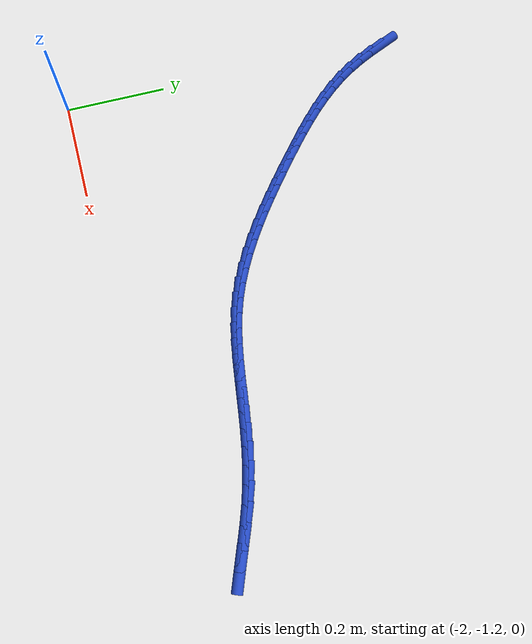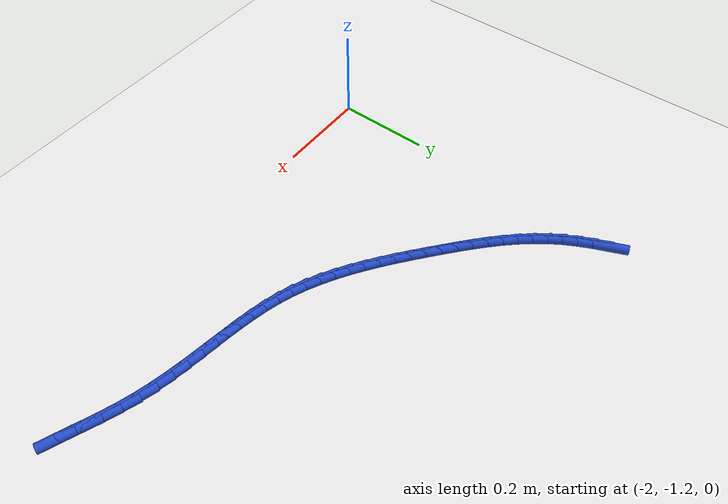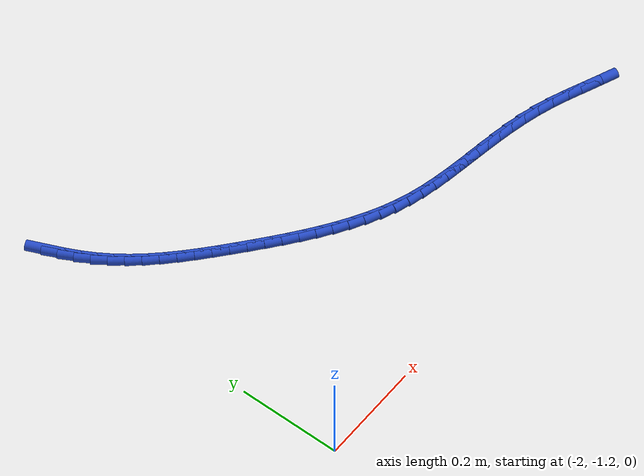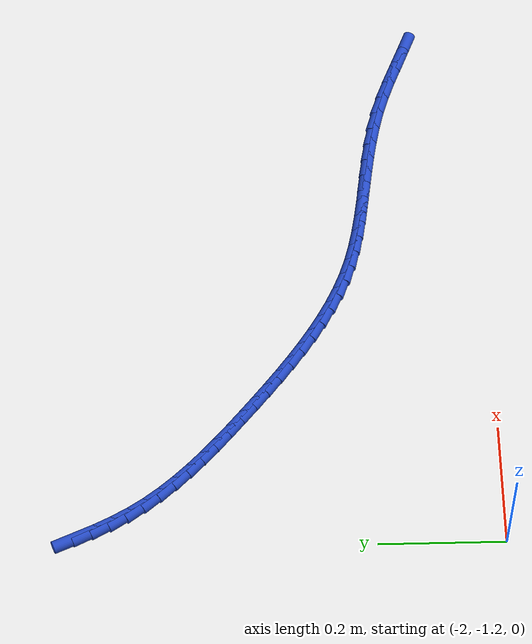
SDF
<sdf version="1.6">
 <world name="default">
  <model name="ground_plane">
   <static>1</static>
   <link name="link">
    <collision name="collision">
     <geometry><plane><normal>0 0 1</normal><size>100 100</size></plane></geometry>
     <surface><friction><ode><mu>100</mu><mu2>50</mu2></ode></friction></surface>
    </collision>
    <visual name="visual">
     <cast_shadows>0</cast_shadows>
     <geometry><plane><normal>0 0 1</normal><size>100 100</size></plane></geometry>
     <material>
      <script><uri>file://media/materials/scripts/gazebo.material</uri><name>Gazebo/WhiteGlow</name></script>
     </material>
    </visual>
   </link>
  </model>
  <model name="line">
   <link name="link_128">
    <pose>-1.9824205630248355 -0.5352586551869116 0.01 0 1.57 -1.163540209218341</pose>
    <collision name="collision">
     <geometry><cylinder><radius>0.01</radius><length>0.08</length></cylinder></geometry>
    </collision>
    <visual name="visual">
     <material>
      <script><name>Gazebo/Blue</name><uri>file://media/materials/scripts/gazebo.material</uri></script>
     </material>
     <geometry><cylinder><radius>0.01</radius><length>0.08</length></cylinder></geometry>
    </visual>
   </link>
   <link name="link_129">
    <pose>-1.9704387740347364 -0.5630345999908062 0.01 0 1.57 -1.1161727735054912</pose>
    <collision name="collision">
     <geometry><cylinder><radius>0.01</radius><length>0.08</length></cylinder></geometry>
    </collision>
    <visual name="visual">
     <material>
      <script><name>Gazebo/Blue</name><uri>file://media/materials/scripts/gazebo.material</uri></script>
     </material>
     <geometry><cylinder><radius>0.01</radius><length>0.08</length></cylinder></geometry>
    </visual>
   </link>
   <link name="link_130">
    <pose>-1.9572504735101077 -0.5900172146852638 0.01 0 1.57 -1.0600776561714969</pose>
    <collision name="collision">
     <geometry><cylinder><radius>0.01</radius><length>0.08</length></cylinder></geometry>
    </collision>
    <visual name="visual">
     <material>
      <script><name>Gazebo/Blue</name><uri>file://media/materials/scripts/gazebo.material</uri></script>
     </material>
     <geometry><cylinder><radius>0.01</radius><length>0.08</length></cylinder></geometry>
    </visual>
   </link>
   <link name="link_131">
    <pose>-1.9426340069946706 -0.6161039504251419 0.01 0 1.57 -0.9956645012167168</pose>
    <collision name="collision">
     <geometry><cylinder><radius>0.01</radius><length>0.08</length></cylinder></geometry>
    </collision>
    <visual name="visual">
     <material>
      <script><name>Gazebo/Blue</name><uri>file://media/materials/scripts/gazebo.material</uri></script>
     </material>
     <geometry><cylinder><radius>0.01</radius><length>0.08</length></cylinder></geometry>
    </visual>
   </link>
   <link name="link_132">
    <pose>-1.9263701226586827 -0.6411935276486431 0.01 0 1.57 -0.9294057634139389</pose>
    <collision name="collision">
     <geometry><cylinder><radius>0.01</radius><length>0.08</length></cylinder></geometry>
    </collision>
    <visual name="visual">
     <material>
      <script><name>Gazebo/Blue</name><uri>file://media/materials/scripts/gazebo.material</uri></script>
     </material>
     <geometry><cylinder><radius>0.01</radius><length>0.08</length></cylinder></geometry>
    </visual>
   </link>
   <link name="link_133">
    <pose>-1.9083946022670153 -0.6652665694772015 0.01 0 1.57 -0.8710264741686167</pose>
    <collision name="collision">
     <geometry><cylinder><radius>0.01</radius><length>0.08</length></cylinder></geometry>
    </collision>
    <visual name="visual">
     <material>
      <script><name>Gazebo/Blue</name><uri>file://media/materials/scripts/gazebo.material</uri></script>
     </material>
     <geometry><cylinder><radius>0.01</radius><length>0.08</length></cylinder></geometry>
    </visual>
   </link>
   <link name="link_134">
    <pose>-1.88889000118483 -0.6884340670345137 0.01 0 1.57 -0.8213768809769031</pose>
    <collision name="collision">
     <geometry><cylinder><radius>0.01</radius><length>0.08</length></cylinder></geometry>
    </collision>
    <visual name="visual">
     <material>
      <script><name>Gazebo/Blue</name><uri>file://media/materials/scripts/gazebo.material</uri></script>
     </material>
     <geometry><cylinder><radius>0.01</radius><length>0.08</length></cylinder></geometry>
    </visual>
   </link>
   <link name="link_135">
    <pose>-1.868060877429615 -0.7108186352234217 0.01 0 1.57 -0.7802501099122588</pose>
    <collision name="collision">
     <geometry><cylinder><radius>0.01</radius><length>0.08</length></cylinder></geometry>
    </collision>
    <visual name="visual">
     <material>
      <script><name>Gazebo/Blue</name><uri>file://media/materials/scripts/gazebo.material</uri></script>
     </material>
     <geometry><cylinder><radius>0.01</radius><length>0.08</length></cylinder></geometry>
    </visual>
   </link>
   <link name="link_136">
    <pose>-1.8461117890188612 -0.732542888946765 0.01 0 1.57 -0.7473257426568556</pose>
    <collision name="collision">
     <geometry><cylinder><radius>0.01</radius><length>0.08</length></cylinder></geometry>
    </collision>
    <visual name="visual">
     <material>
      <script><name>Gazebo/Blue</name><uri>file://media/materials/scripts/gazebo.material</uri></script>
     </material>
     <geometry><cylinder><radius>0.01</radius><length>0.08</length></cylinder></geometry>
    </visual>
   </link>
   <link name="link_137">
    <pose>-1.8232472939700564 -0.7537294431073859 0.01 0 1.57 -0.722256153637606</pose>
    <collision name="collision">
     <geometry><cylinder><radius>0.01</radius><length>0.08</length></cylinder></geometry>
    </collision>
    <visual name="visual">
     <material>
      <script><name>Gazebo/Blue</name><uri>file://media/materials/scripts/gazebo.material</uri></script>
     </material>
     <geometry><cylinder><radius>0.01</radius><length>0.08</length></cylinder></geometry>
    </visual>
   </link>
   <link name="link_138">
    <pose>-1.7996719503006882 -0.7745009126081243 0.01 0 1.57 -0.70472570785795</pose>
    <collision name="collision">
     <geometry><cylinder><radius>0.01</radius><length>0.08</length></cylinder></geometry>
    </collision>
    <visual name="visual">
     <material>
      <script><name>Gazebo/Blue</name><uri>file://media/materials/scripts/gazebo.material</uri></script>
     </material>
     <geometry><cylinder><radius>0.01</radius><length>0.08</length></cylinder></geometry>
    </visual>
   </link>
   <link name="link_139">
    <pose>-1.7755903160282462 -0.7949799123518225 0.01 0 1.57 -0.6942104828814194</pose>
    <collision name="collision">
     <geometry><cylinder><radius>0.01</radius><length>0.08</length></cylinder></geometry>
    </collision>
    <visual name="visual">
     <material>
      <script><name>Gazebo/Blue</name><uri>file://media/materials/scripts/gazebo.material</uri></script>
     </material>
     <geometry><cylinder><radius>0.01</radius><length>0.08</length></cylinder></geometry>
    </visual>
   </link>
   <link name="link_140">
    <pose>-1.7512016302898123 -0.8152820155179107 0.01 0 1.57 -0.6846084862300147</pose>
    <collision name="collision">
     <geometry><cylinder><radius>0.01</radius><length>0.08</length></cylinder></geometry>
    </collision>
    <visual name="visual">
     <material>
      <script><name>Gazebo/Blue</name><uri>file://media/materials/scripts/gazebo.material</uri></script>
     </material>
     <geometry><cylinder><radius>0.01</radius><length>0.08</length></cylinder></geometry>
    </visual>
   </link>
   <link name="link_141">
    <pose>-1.7265911288022688 -0.8353718649224052 0.01 0 1.57 -0.6701091279579041</pose>
    <collision name="collision">
     <geometry><cylinder><radius>0.01</radius><length>0.08</length></cylinder></geometry>
    </collision>
    <visual name="visual">
     <material>
      <script><name>Gazebo/Blue</name><uri>file://media/materials/scripts/gazebo.material</uri></script>
     </material>
     <geometry><cylinder><radius>0.01</radius><length>0.08</length></cylinder></geometry>
    </visual>
   </link>
   <link name="link_142">
    <pose>-1.701734488578362 -0.8550690574256717 0.01 0 1.57 -0.6503319635858972</pose>
    <collision name="collision">
     <geometry><cylinder><radius>0.01</radius><length>0.08</length></cylinder></geometry>
    </collision>
    <visual name="visual">
     <material>
      <script><name>Gazebo/Blue</name><uri>file://media/materials/scripts/gazebo.material</uri></script>
     </material>
     <geometry><cylinder><radius>0.01</radius><length>0.08</length></cylinder></geometry>
    </visual>
   </link>
   <link name="link_143">
    <pose>-1.6766029571343783 -0.8741873256297091 0.01 0 1.57 -0.6250515397433934</pose>
    <collision name="collision">
     <geometry><cylinder><radius>0.01</radius><length>0.08</length></cylinder></geometry>
    </collision>
    <visual name="visual">
     <material>
      <script><name>Gazebo/Blue</name><uri>file://media/materials/scripts/gazebo.material</uri></script>
     </material>
     <geometry><cylinder><radius>0.01</radius><length>0.08</length></cylinder></geometry>
    </visual>
   </link>
   <link name="link_144">
    <pose>-1.6511677819866042 -0.8925404021365152 0.01 0 1.57 -0.5939764310257649</pose>
    <collision name="collision">
     <geometry><cylinder><radius>0.01</radius><length>0.08</length></cylinder></geometry>
    </collision>
    <visual name="visual">
     <material>
      <script><name>Gazebo/Blue</name><uri>file://media/materials/scripts/gazebo.material</uri></script>
     </material>
     <geometry><cylinder><radius>0.01</radius><length>0.08</length></cylinder></geometry>
    </visual>
   </link>
   <link name="link_145">
    <pose>-1.625400210651324 -0.9099420195480883 0.01 0 1.57 -0.5567654130562475</pose>
    <collision name="collision">
     <geometry><cylinder><radius>0.01</radius><length>0.08</length></cylinder></geometry>
    </collision>
    <visual name="visual">
     <material>
      <script><name>Gazebo/Blue</name><uri>file://media/materials/scripts/gazebo.material</uri></script>
     </material>
     <geometry><cylinder><radius>0.01</radius><length>0.08</length></cylinder></geometry>
    </visual>
   </link>
   <link name="link_146">
    <pose>-1.5992714906448235 -0.926205910466427 0.01 0 1.57 -0.5130530080040396</pose>
    <collision name="collision">
     <geometry><cylinder><radius>0.01</radius><length>0.08</length></cylinder></geometry>
    </collision>
    <visual name="visual">
     <material>
      <script><name>Gazebo/Blue</name><uri>file://media/materials/scripts/gazebo.material</uri></script>
     </material>
     <geometry><cylinder><radius>0.01</radius><length>0.08</length></cylinder></geometry>
    </visual>
   </link>
   <link name="link_147">
    <pose>-1.5727528694833885 -0.9411458074935297 0.01 0 1.57 -0.46248864260017053</pose>
    <collision name="collision">
     <geometry><cylinder><radius>0.01</radius><length>0.08</length></cylinder></geometry>
    </collision>
    <visual name="visual">
     <material>
      <script><name>Gazebo/Blue</name><uri>file://media/materials/scripts/gazebo.material</uri></script>
     </material>
     <geometry><cylinder><radius>0.01</radius><length>0.08</length></cylinder></geometry>
    </visual>
   </link>
   <link name="link_148">
    <pose>-1.5458155946833037 -0.9545754432313953 0.01 0 1.57 -0.40479353070849255</pose>
    <collision name="collision">
     <geometry><cylinder><radius>0.01</radius><length>0.08</length></cylinder></geometry>
    </collision>
    <visual name="visual">
     <material>
      <script><name>Gazebo/Blue</name><uri>file://media/materials/scripts/gazebo.material</uri></script>
     </material>
     <geometry><cylinder><radius>0.01</radius><length>0.08</length></cylinder></geometry>
    </visual>
   </link>
   <link name="link_149">
    <pose>-1.5184309137608558 -0.966308550282021 0.01 0 1.57 -0.34013112341542806</pose>
    <collision name="collision">
     <geometry><cylinder><radius>0.01</radius><length>0.08</length></cylinder></geometry>
    </collision>
    <visual name="visual">
     <material>
      <script><name>Gazebo/Blue</name><uri>file://media/materials/scripts/gazebo.material</uri></script>
     </material>
     <geometry><cylinder><radius>0.01</radius><length>0.08</length></cylinder></geometry>
    </visual>
   </link>
   <link name="link_150">
    <pose>-1.4905709394634317 -0.97616776100887 0.01 0 1.57 -0.2770322284016727</pose>
    <collision name="collision">
     <geometry><cylinder><radius>0.01</radius><length>0.08</length></cylinder></geometry>
    </collision>
    <visual name="visual">
     <material>
      <script><name>Gazebo/Blue</name><uri>file://media/materials/scripts/gazebo.material</uri></script>
     </material>
     <geometry><cylinder><radius>0.01</radius><length>0.08</length></cylinder></geometry>
    </visual>
   </link>
   <link name="link_151">
    <pose>-1.4622320924617258 -0.9842257389158061 0.01 0 1.57 -0.225569847677577</pose>
    <collision name="collision">
     <geometry><cylinder><radius>0.01</radius><length>0.08</length></cylinder></geometry>
    </collision>
    <visual name="visual">
     <material>
      <script><name>Gazebo/Blue</name><uri>file://media/materials/scripts/gazebo.material</uri></script>
     </material>
     <geometry><cylinder><radius>0.01</radius><length>0.08</length></cylinder></geometry>
    </visual>
   </link>
   <link name="link_152">
    <pose>-1.4334378358011897 -0.9908333051968717 0.01 0 1.57 -0.1867647574178953</pose>
    <collision name="collision">
     <geometry><cylinder><radius>0.01</radius><length>0.08</length></cylinder></geometry>
    </collision>
    <visual name="visual">
     <material>
      <script><name>Gazebo/Blue</name><uri>file://media/materials/scripts/gazebo.material</uri></script>
     </material>
     <geometry><cylinder><radius>0.01</radius><length>0.08</length></cylinder></geometry>
    </visual>
   </link>
   <link name="link_153">
    <pose>-1.4042130465976628 -0.9963558261648564 0.01 0 1.57 -0.16069384720999164</pose>
    <collision name="collision">
     <geometry><cylinder><radius>0.01</radius><length>0.08</length></cylinder></geometry>
    </collision>
    <visual name="visual">
     <material>
      <script><name>Gazebo/Blue</name><uri>file://media/materials/scripts/gazebo.material</uri></script>
     </material>
     <geometry><cylinder><radius>0.01</radius><length>0.08</length></cylinder></geometry>
    </visual>
   </link>
   <link name="link_154">
    <pose>-1.3745826019669831 -1.0011586681325513 0.01 0 1.57 -0.14715733017802088</pose>
    <collision name="collision">
     <geometry><cylinder><radius>0.01</radius><length>0.08</length></cylinder></geometry>
    </collision>
    <visual name="visual">
     <material>
      <script><name>Gazebo/Blue</name><uri>file://media/materials/scripts/gazebo.material</uri></script>
     </material>
     <geometry><cylinder><radius>0.01</radius><length>0.08</length></cylinder></geometry>
    </visual>
   </link>
   <link name="link_155">
    <pose>-1.344571379024988 -1.005607197412746 0.01 0 1.57 -0.14581335190037165</pose>
    <collision name="collision">
     <geometry><cylinder><radius>0.01</radius><length>0.08</length></cylinder></geometry>
    </collision>
    <visual name="visual">
     <material>
      <script><name>Gazebo/Blue</name><uri>file://media/materials/scripts/gazebo.material</uri></script>
     </material>
     <geometry><cylinder><radius>0.01</radius><length>0.08</length></cylinder></geometry>
    </visual>
   </link>
   <link name="link_156">
    <pose>-1.3142042548875148 -1.0100667803182308 0.01 0 1.57 -0.1562499195054703</pose>
    <collision name="collision">
     <geometry><cylinder><radius>0.01</radius><length>0.08</length></cylinder></geometry>
    </collision>
    <visual name="visual">
     <material>
      <script><name>Gazebo/Blue</name><uri>file://media/materials/scripts/gazebo.material</uri></script>
     </material>
     <geometry><cylinder><radius>0.01</radius><length>0.08</length></cylinder></geometry>
    </visual>
   </link>
   <link name="link_157">
    <pose>-1.283506106670403 -1.0149027831617958 0.01 0 1.57 -0.1779997112125955</pose>
    <collision name="collision">
     <geometry><cylinder><radius>0.01</radius><length>0.08</length></cylinder></geometry>
    </collision>
    <visual name="visual">
     <material>
      <script><name>Gazebo/Blue</name><uri>file://media/materials/scripts/gazebo.material</uri></script>
     </material>
     <geometry><cylinder><radius>0.01</radius><length>0.08</length></cylinder></geometry>
    </visual>
   </link>
   <link name="link_158">
    <pose>-1.2525018114894901 -1.0204805722562313 0.01 0 1.57 -0.21050931347522117</pose>
    <collision name="collision">
     <geometry><cylinder><radius>0.01</radius><length>0.08</length></cylinder></geometry>
    </collision>
    <visual name="visual">
     <material>
      <script><name>Gazebo/Blue</name><uri>file://media/materials/scripts/gazebo.material</uri></script>
     </material>
     <geometry><cylinder><radius>0.01</radius><length>0.08</length></cylinder></geometry>
    </visual>
   </link>
   <link name="link_159">
    <pose>-1.221216246460614 -1.0271655139143274 0.01 0 1.57 -0.2530773657605061</pose>
    <collision name="collision">
     <geometry><cylinder><radius>0.01</radius><length>0.08</length></cylinder></geometry>
    </collision>
    <visual name="visual">
     <material>
      <script><name>Gazebo/Blue</name><uri>file://media/materials/scripts/gazebo.material</uri></script>
     </material>
     <geometry><cylinder><radius>0.01</radius><length>0.08</length></cylinder></geometry>
    </visual>
   </link>
   <link name="link_160">
    <pose>-1.189674288699612 -1.0353229744488746 0.01 0 1.57 -0.30466649475444535</pose>
    <collision name="collision">
     <geometry><cylinder><radius>0.01</radius><length>0.08</length></cylinder></geometry>
    </collision>
    <visual name="visual">
     <material>
      <script><name>Gazebo/Blue</name><uri>file://media/materials/scripts/gazebo.material</uri></script>
     </material>
     <geometry><cylinder><radius>0.01</radius><length>0.08</length></cylinder></geometry>
    </visual>
   </link>
   <link name="link_161">
    <pose>-1.157901375854497 -1.0453141799244425 0.01 0 1.57 -0.35409582602120065</pose>
    <collision name="collision">
     <geometry><cylinder><radius>0.01</radius><length>0.08</length></cylinder></geometry>
    </collision>
    <visual name="visual">
     <material>
      <script><name>Gazebo/Blue</name><uri>file://media/materials/scripts/gazebo.material</uri></script>
     </material>
     <geometry><cylinder><radius>0.01</radius><length>0.08</length></cylinder></geometry>
    </visual>
   </link>
   <link name="link_162">
    <pose>-1.1259748916080465 -1.0571166683893407 0.01 0 1.57 -0.38423890583511433</pose>
    <collision name="collision">
     <geometry><cylinder><radius>0.01</radius><length>0.08</length></cylinder></geometry>
    </collision>
    <visual name="visual">
     <material>
      <script><name>Gazebo/Blue</name><uri>file://media/materials/scripts/gazebo.material</uri></script>
     </material>
     <geometry><cylinder><radius>0.01</radius><length>0.08</length></cylinder></geometry>
    </visual>
   </link>
   <link name="link_163">
    <pose>-1.0940655274333173 -1.0700187803214505 0.01 0 1.57 -0.39492343322709983</pose>
    <collision name="collision">
     <geometry><cylinder><radius>0.01</radius><length>0.08</length></cylinder></geometry>
    </collision>
    <visual name="visual">
     <material>
      <script><name>Gazebo/Blue</name><uri>file://media/materials/scripts/gazebo.material</uri></script>
     </material>
     <geometry><cylinder><radius>0.01</radius><length>0.08</length></cylinder></geometry>
    </visual>
   </link>
   <link name="link_164">
    <pose>-1.0623537081469019 -1.083236962986976 0.01 0 1.57 -0.38646667483013575</pose>
    <collision name="collision">
     <geometry><cylinder><radius>0.01</radius><length>0.08</length></cylinder></geometry>
    </collision>
    <visual name="visual">
     <material>
      <script><name>Gazebo/Blue</name><uri>file://media/materials/scripts/gazebo.material</uri></script>
     </material>
     <geometry><cylinder><radius>0.01</radius><length>0.08</length></cylinder></geometry>
    </visual>
   </link>
  </model>
 </world>
</sdf>
